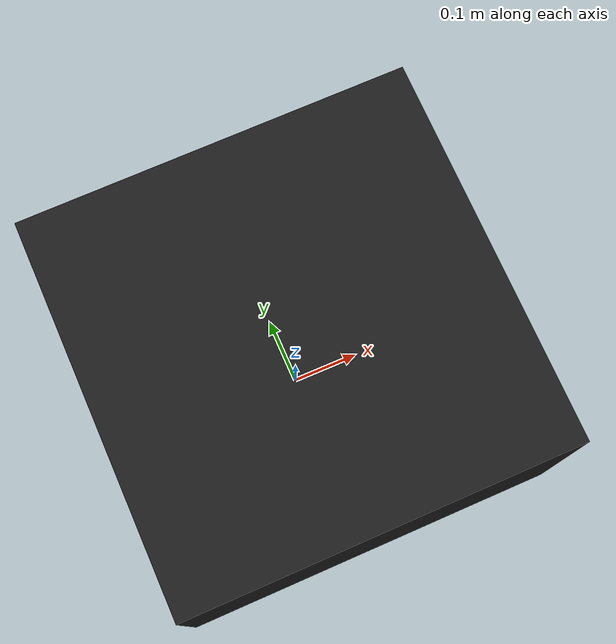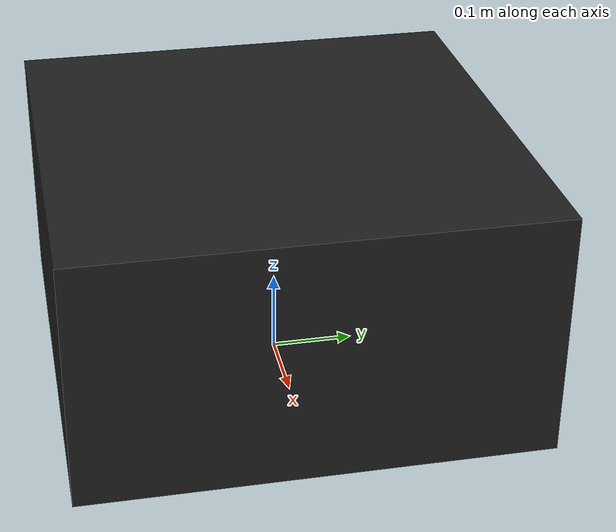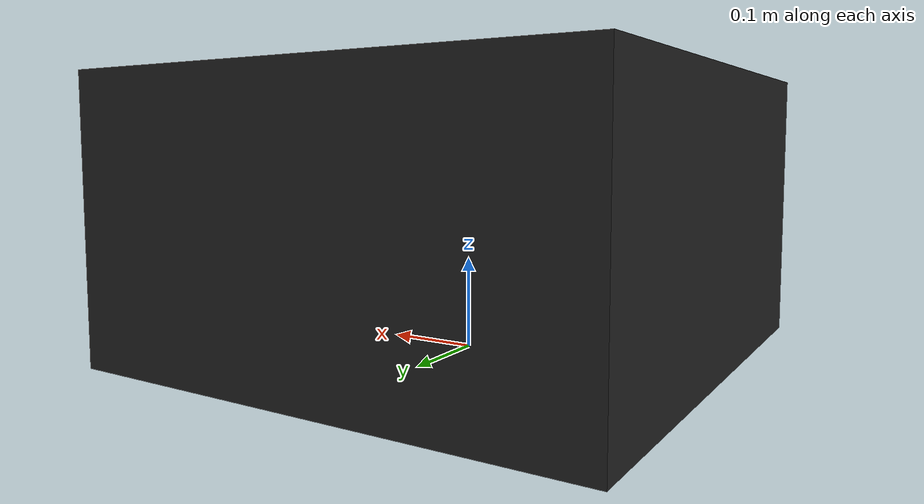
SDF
<?xml version="1.0" ?>
<sdf version="1.6">
  <model name="imitation_learning_block">
    <link name="link">
    	<inertial>
		    <origin xyz="0 0 0"/>
		    <mass value="100.0"/>
		    <inertia ixx="0.16" ixy="0" ixz="0" iyy="0.16" iyz="0" izz="0.32" />
	    </inertial>
      <collision name="collision">
        <geometry>
          <mesh>
            <scale>0.93 0.93 1</scale>
            <uri>model://imitation_learning_block/meshes/imitation_learning_block.stl</uri>
          </mesh>
          <surface>
            <friction>
              <ode>
                <mu>1.2</mu>
                <mu2>1.2</mu2>
              </ode>
            </friction>
          </surface>
        </geometry>
      </collision>
      <visual name="visual">
        <geometry>
          <mesh>
            <scale>0.93 0.93 1</scale>
            <uri>model://imitation_learning_block/meshes/imitation_learning_block.dae</uri>
          </mesh>
        </geometry>
      </visual>
    </link>
  </model>
</sdf>
